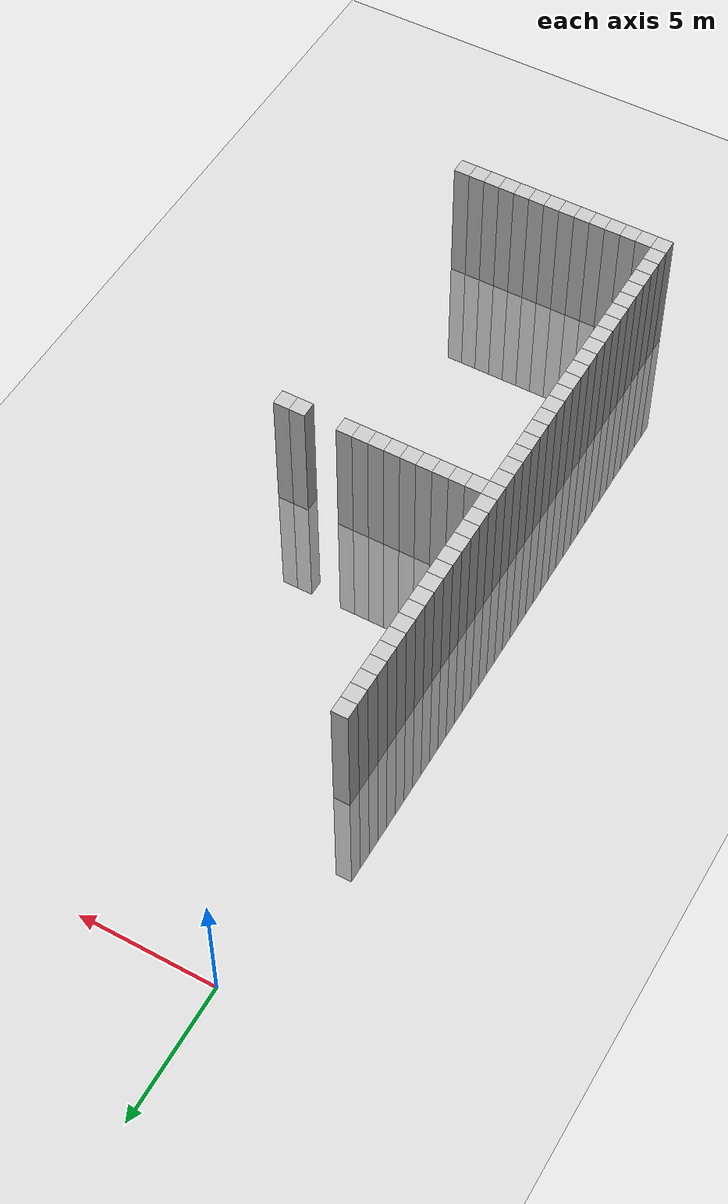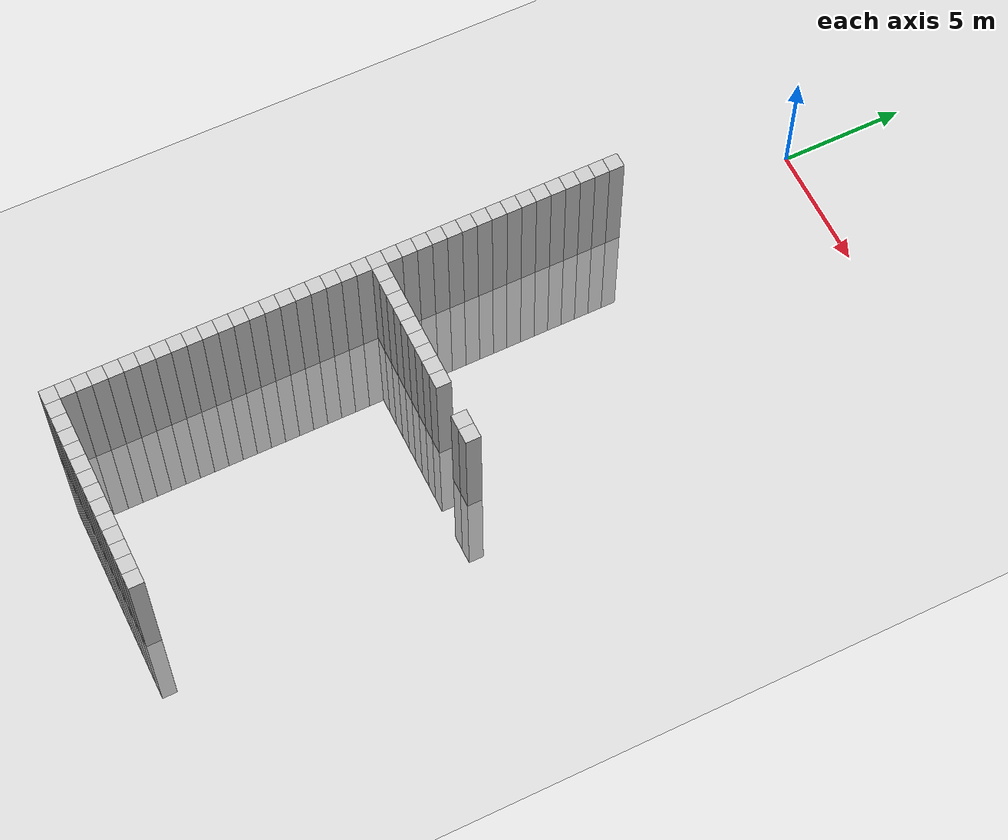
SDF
<sdf version="1.6">
 <world name="default">
  <model name="ground_plane">
   <static>1</static>
   <link name="link">
    <collision name="collision">
     <geometry><plane><normal>0 0 1</normal><size>100 100</size></plane></geometry>
     <surface><friction><ode><mu>100</mu><mu2>50</mu2></ode></friction></surface>
    </collision>
    <visual name="visual">
     <cast_shadows>0</cast_shadows>
     <geometry><plane><normal>0 0 1</normal><size>100 100</size></plane></geometry>
     <material>
      <script><uri>file://media/materials/scripts/gazebo.material</uri><name>Gazebo/Grey</name></script>
     </material>
    </visual>
   </link>
  </model>
  <model name="unit_cylinder_687">
   <static>1</static>
   <pose>0 -30 0 0 -0 0</pose>
   <link name="link">
    <inertial>
     <mass>1</mass>
     <inertia><ixx>0.145833</ixx><ixy>0</ixy><ixz>0</ixz><iyy>0.145833</iyy><iyz>0</iyz><izz>0.125</izz></inertia>
    </inertial>
    <collision name="collision"><geometry><box><size>0.6 0.6 10</size></box></geometry></collision>
    <visual name="visual">
     <geometry><box><size>0.6 0.6 10</size></box></geometry>
     <material><ambient>0.753 0.753 0.753 1</ambient><diffuse>0.753 0.753 0.753 1</diffuse></material>
     <material>
      <script><name>Gazebo/Grey</name><uri>file://media/materials/scripts/gazebo.material</uri></script>
     </material>
    </visual>
   </link>
  </model>
  <model name="unit_cylinder_688">
   <static>1</static>
   <pose>0 -29.4 0 0 -0 0</pose>
   <link name="link">
    <inertial>
     <mass>1</mass>
     <inertia><ixx>0.145833</ixx><ixy>0</ixy><ixz>0</ixz><iyy>0.145833</iyy><iyz>0</iyz><izz>0.125</izz></inertia>
    </inertial>
    <collision name="collision"><geometry><box><size>0.6 0.6 10</size></box></geometry></collision>
    <visual name="visual">
     <geometry><box><size>0.6 0.6 10</size></box></geometry>
     <material><ambient>0.753 0.753 0.753 1</ambient><diffuse>0.753 0.753 0.753 1</diffuse></material>
     <material>
      <script><name>Gazebo/Grey</name><uri>file://media/materials/scripts/gazebo.material</uri></script>
     </material>
    </visual>
   </link>
  </model>
  <model name="unit_cylinder_689">
   <static>1</static>
   <pose>0 -28.8 0 0 -0 0</pose>
   <link name="link">
    <inertial>
     <mass>1</mass>
     <inertia><ixx>0.145833</ixx><ixy>0</ixy><ixz>0</ixz><iyy>0.145833</iyy><iyz>0</iyz><izz>0.125</izz></inertia>
    </inertial>
    <collision name="collision"><geometry><box><size>0.6 0.6 10</size></box></geometry></collision>
    <visual name="visual">
     <geometry><box><size>0.6 0.6 10</size></box></geometry>
     <material><ambient>0.753 0.753 0.753 1</ambient><diffuse>0.753 0.753 0.753 1</diffuse></material>
     <material>
      <script><name>Gazebo/Grey</name><uri>file://media/materials/scripts/gazebo.material</uri></script>
     </material>
    </visual>
   </link>
  </model>
  <model name="unit_cylinder_690">
   <static>1</static>
   <pose>0 -28.2 0 0 -0 0</pose>
   <link name="link">
    <inertial>
     <mass>1</mass>
     <inertia><ixx>0.145833</ixx><ixy>0</ixy><ixz>0</ixz><iyy>0.145833</iyy><iyz>0</iyz><izz>0.125</izz></inertia>
    </inertial>
    <collision name="collision"><geometry><box><size>0.6 0.6 10</size></box></geometry></collision>
    <visual name="visual">
     <geometry><box><size>0.6 0.6 10</size></box></geometry>
     <material><ambient>0.753 0.753 0.753 1</ambient><diffuse>0.753 0.753 0.753 1</diffuse></material>
     <material>
      <script><name>Gazebo/Grey</name><uri>file://media/materials/scripts/gazebo.material</uri></script>
     </material>
    </visual>
   </link>
  </model>
  <model name="unit_cylinder_691">
   <static>1</static>
   <pose>0 -27.6 0 0 -0 0</pose>
   <link name="link">
    <inertial>
     <mass>1</mass>
     <inertia><ixx>0.145833</ixx><ixy>0</ixy><ixz>0</ixz><iyy>0.145833</iyy><iyz>0</iyz><izz>0.125</izz></inertia>
    </inertial>
    <collision name="collision"><geometry><box><size>0.6 0.6 10</size></box></geometry></collision>
    <visual name="visual">
     <geometry><box><size>0.6 0.6 10</size></box></geometry>
     <material><ambient>0.753 0.753 0.753 1</ambient><diffuse>0.753 0.753 0.753 1</diffuse></material>
     <material>
      <script><name>Gazebo/Grey</name><uri>file://media/materials/scripts/gazebo.material</uri></script>
     </material>
    </visual>
   </link>
  </model>
  <model name="unit_cylinder_692">
   <static>1</static>
   <pose>0 -27 0 0 -0 0</pose>
   <link name="link">
    <inertial>
     <mass>1</mass>
     <inertia><ixx>0.145833</ixx><ixy>0</ixy><ixz>0</ixz><iyy>0.145833</iyy><iyz>0</iyz><izz>0.125</izz></inertia>
    </inertial>
    <collision name="collision"><geometry><box><size>0.6 0.6 10</size></box></geometry></collision>
    <visual name="visual">
     <geometry><box><size>0.6 0.6 10</size></box></geometry>
     <material><ambient>0.753 0.753 0.753 1</ambient><diffuse>0.753 0.753 0.753 1</diffuse></material>
     <material>
      <script><name>Gazebo/Grey</name><uri>file://media/materials/scripts/gazebo.material</uri></script>
     </material>
    </visual>
   </link>
  </model>
  <model name="unit_cylinder_693">
   <static>1</static>
   <pose>0 -26.4 0 0 -0 0</pose>
   <link name="link">
    <inertial>
     <mass>1</mass>
     <inertia><ixx>0.145833</ixx><ixy>0</ixy><ixz>0</ixz><iyy>0.145833</iyy><iyz>0</iyz><izz>0.125</izz></inertia>
    </inertial>
    <collision name="collision"><geometry><box><size>0.6 0.6 10</size></box></geometry></collision>
    <visual name="visual">
     <geometry><box><size>0.6 0.6 10</size></box></geometry>
     <material><ambient>0.753 0.753 0.753 1</ambient><diffuse>0.753 0.753 0.753 1</diffuse></material>
     <material>
      <script><name>Gazebo/Grey</name><uri>file://media/materials/scripts/gazebo.material</uri></script>
     </material>
    </visual>
   </link>
  </model>
  <model name="unit_cylinder_694">
   <static>1</static>
   <pose>0 -25.8 0 0 -0 0</pose>
   <link name="link">
    <inertial>
     <mass>1</mass>
     <inertia><ixx>0.145833</ixx><ixy>0</ixy><ixz>0</ixz><iyy>0.145833</iyy><iyz>0</iyz><izz>0.125</izz></inertia>
    </inertial>
    <collision name="collision"><geometry><box><size>0.6 0.6 10</size></box></geometry></collision>
    <visual name="visual">
     <geometry><box><size>0.6 0.6 10</size></box></geometry>
     <material><ambient>0.753 0.753 0.753 1</ambient><diffuse>0.753 0.753 0.753 1</diffuse></material>
     <material>
      <script><name>Gazebo/Grey</name><uri>file://media/materials/scripts/gazebo.material</uri></script>
     </material>
    </visual>
   </link>
  </model>
  <model name="unit_cylinder_695">
   <static>1</static>
   <pose>0 -25.2 0 0 -0 0</pose>
   <link name="link">
    <inertial>
     <mass>1</mass>
     <inertia><ixx>0.145833</ixx><ixy>0</ixy><ixz>0</ixz><iyy>0.145833</iyy><iyz>0</iyz><izz>0.125</izz></inertia>
    </inertial>
    <collision name="collision"><geometry><box><size>0.6 0.6 10</size></box></geometry></collision>
    <visual name="visual">
     <geometry><box><size>0.6 0.6 10</size></box></geometry>
     <material><ambient>0.753 0.753 0.753 1</ambient><diffuse>0.753 0.753 0.753 1</diffuse></material>
     <material>
      <script><name>Gazebo/Grey</name><uri>file://media/materials/scripts/gazebo.material</uri></script>
     </material>
    </visual>
   </link>
  </model>
  <model name="unit_cylinder_696">
   <static>1</static>
   <pose>0 -24.6 0 0 -0 0</pose>
   <link name="link">
    <inertial>
     <mass>1</mass>
     <inertia><ixx>0.145833</ixx><ixy>0</ixy><ixz>0</ixz><iyy>0.145833</iyy><iyz>0</iyz><izz>0.125</izz></inertia>
    </inertial>
    <collision name="collision"><geometry><box><size>0.6 0.6 10</size></box></geometry></collision>
    <visual name="visual">
     <geometry><box><size>0.6 0.6 10</size></box></geometry>
     <material><ambient>0.753 0.753 0.753 1</ambient><diffuse>0.753 0.753 0.753 1</diffuse></material>
     <material>
      <script><name>Gazebo/Grey</name><uri>file://media/materials/scripts/gazebo.material</uri></script>
     </material>
    </visual>
   </link>
  </model>
  <model name="unit_cylinder_697">
   <static>1</static>
   <pose>0 -24 0 0 -0 0</pose>
   <link name="link">
    <inertial>
     <mass>1</mass>
     <inertia><ixx>0.145833</ixx><ixy>0</ixy><ixz>0</ixz><iyy>0.145833</iyy><iyz>0</iyz><izz>0.125</izz></inertia>
    </inertial>
    <collision name="collision"><geometry><box><size>0.6 0.6 10</size></box></geometry></collision>
    <visual name="visual">
     <geometry><box><size>0.6 0.6 10</size></box></geometry>
     <material><ambient>0.753 0.753 0.753 1</ambient><diffuse>0.753 0.753 0.753 1</diffuse></material>
     <material>
      <script><name>Gazebo/Grey</name><uri>file://media/materials/scripts/gazebo.material</uri></script>
     </material>
    </visual>
   </link>
  </model>
  <model name="unit_cylinder_698">
   <static>1</static>
   <pose>0 -23.4 0 0 -0 0</pose>
   <link name="link">
    <inertial>
     <mass>1</mass>
     <inertia><ixx>0.145833</ixx><ixy>0</ixy><ixz>0</ixz><iyy>0.145833</iyy><iyz>0</iyz><izz>0.125</izz></inertia>
    </inertial>
    <collision name="collision"><geometry><box><size>0.6 0.6 10</size></box></geometry></collision>
    <visual name="visual">
     <geometry><box><size>0.6 0.6 10</size></box></geometry>
     <material><ambient>0.753 0.753 0.753 1</ambient><diffuse>0.753 0.753 0.753 1</diffuse></material>
     <material>
      <script><name>Gazebo/Grey</name><uri>file://media/materials/scripts/gazebo.material</uri></script>
     </material>
    </visual>
   </link>
  </model>
  <model name="unit_cylinder_699">
   <static>1</static>
   <pose>0 -22.8 0 0 -0 0</pose>
   <link name="link">
    <inertial>
     <mass>1</mass>
     <inertia><ixx>0.145833</ixx><ixy>0</ixy><ixz>0</ixz><iyy>0.145833</iyy><iyz>0</iyz><izz>0.125</izz></inertia>
    </inertial>
    <collision name="collision"><geometry><box><size>0.6 0.6 10</size></box></geometry></collision>
    <visual name="visual">
     <geometry><box><size>0.6 0.6 10</size></box></geometry>
     <material><ambient>0.753 0.753 0.753 1</ambient><diffuse>0.753 0.753 0.753 1</diffuse></material>
     <material>
      <script><name>Gazebo/Grey</name><uri>file://media/materials/scripts/gazebo.material</uri></script>
     </material>
    </visual>
   </link>
  </model>
  <model name="unit_cylinder_700">
   <static>1</static>
   <pose>0 -22.2 0 0 -0 0</pose>
   <link name="link">
    <inertial>
     <mass>1</mass>
     <inertia><ixx>0.145833</ixx><ixy>0</ixy><ixz>0</ixz><iyy>0.145833</iyy><iyz>0</iyz><izz>0.125</izz></inertia>
    </inertial>
    <collision name="collision"><geometry><box><size>0.6 0.6 10</size></box></geometry></collision>
    <visual name="visual">
     <geometry><box><size>0.6 0.6 10</size></box></geometry>
     <material><ambient>0.753 0.753 0.753 1</ambient><diffuse>0.753 0.753 0.753 1</diffuse></material>
     <material>
      <script><name>Gazebo/Grey</name><uri>file://media/materials/scripts/gazebo.material</uri></script>
     </material>
    </visual>
   </link>
  </model>
  <model name="unit_cylinder_701">
   <static>1</static>
   <pose>0 -21.6 0 0 -0 0</pose>
   <link name="link">
    <inertial>
     <mass>1</mass>
     <inertia><ixx>0.145833</ixx><ixy>0</ixy><ixz>0</ixz><iyy>0.145833</iyy><iyz>0</iyz><izz>0.125</izz></inertia>
    </inertial>
    <collision name="collision"><geometry><box><size>0.6 0.6 10</size></box></geometry></collision>
    <visual name="visual">
     <geometry><box><size>0.6 0.6 10</size></box></geometry>
     <material><ambient>0.753 0.753 0.753 1</ambient><diffuse>0.753 0.753 0.753 1</diffuse></material>
     <material>
      <script><name>Gazebo/Grey</name><uri>file://media/materials/scripts/gazebo.material</uri></script>
     </material>
    </visual>
   </link>
  </model>
  <model name="unit_cylinder_702">
   <static>1</static>
   <pose>0 -21 0 0 -0 0</pose>
   <link name="link">
    <inertial>
     <mass>1</mass>
     <inertia><ixx>0.145833</ixx><ixy>0</ixy><ixz>0</ixz><iyy>0.145833</iyy><iyz>0</iyz><izz>0.125</izz></inertia>
    </inertial>
    <collision name="collision"><geometry><box><size>0.6 0.6 10</size></box></geometry></collision>
    <visual name="visual">
     <geometry><box><size>0.6 0.6 10</size></box></geometry>
     <material><ambient>0.753 0.753 0.753 1</ambient><diffuse>0.753 0.753 0.753 1</diffuse></material>
     <material>
      <script><name>Gazebo/Grey</name><uri>file://media/materials/scripts/gazebo.material</uri></script>
     </material>
    </visual>
   </link>
  </model>
  <model name="unit_cylinder_703">
   <static>1</static>
   <pose>0 -20.4 0 0 -0 0</pose>
   <link name="link">
    <inertial>
     <mass>1</mass>
     <inertia><ixx>0.145833</ixx><ixy>0</ixy><ixz>0</ixz><iyy>0.145833</iyy><iyz>0</iyz><izz>0.125</izz></inertia>
    </inertial>
    <collision name="collision"><geometry><box><size>0.6 0.6 10</size></box></geometry></collision>
    <visual name="visual">
     <geometry><box><size>0.6 0.6 10</size></box></geometry>
     <material><ambient>0.753 0.753 0.753 1</ambient><diffuse>0.753 0.753 0.753 1</diffuse></material>
     <material>
      <script><name>Gazebo/Grey</name><uri>file://media/materials/scripts/gazebo.material</uri></script>
     </material>
    </visual>
   </link>
  </model>
  <model name="unit_cylinder_704">
   <static>1</static>
   <pose>0 -19.8 0 0 -0 0</pose>
   <link name="link">
    <inertial>
     <mass>1</mass>
     <inertia><ixx>0.145833</ixx><ixy>0</ixy><ixz>0</ixz><iyy>0.145833</iyy><iyz>0</iyz><izz>0.125</izz></inertia>
    </inertial>
    <collision name="collision"><geometry><box><size>0.6 0.6 10</size></box></geometry></collision>
    <visual name="visual">
     <geometry><box><size>0.6 0.6 10</size></box></geometry>
     <material><ambient>0.753 0.753 0.753 1</ambient><diffuse>0.753 0.753 0.753 1</diffuse></material>
     <material>
      <script><name>Gazebo/Grey</name><uri>file://media/materials/scripts/gazebo.material</uri></script>
     </material>
    </visual>
   </link>
  </model>
  <model name="unit_cylinder_705">
   <static>1</static>
   <pose>0 -19.2 0 0 -0 0</pose>
   <link name="link">
    <inertial>
     <mass>1</mass>
     <inertia><ixx>0.145833</ixx><ixy>0</ixy><ixz>0</ixz><iyy>0.145833</iyy><iyz>0</iyz><izz>0.125</izz></inertia>
    </inertial>
    <collision name="collision"><geometry><box><size>0.6 0.6 10</size></box></geometry></collision>
    <visual name="visual">
     <geometry><box><size>0.6 0.6 10</size></box></geometry>
     <material><ambient>0.753 0.753 0.753 1</ambient><diffuse>0.753 0.753 0.753 1</diffuse></material>
     <material>
      <script><name>Gazebo/Grey</name><uri>file://media/materials/scripts/gazebo.material</uri></script>
     </material>
    </visual>
   </link>
  </model>
  <model name="unit_cylinder_706">
   <static>1</static>
   <pose>0 -18.6 0 0 -0 0</pose>
   <link name="link">
    <inertial>
     <mass>1</mass>
     <inertia><ixx>0.145833</ixx><ixy>0</ixy><ixz>0</ixz><iyy>0.145833</iyy><iyz>0</iyz><izz>0.125</izz></inertia>
    </inertial>
    <collision name="collision"><geometry><box><size>0.6 0.6 10</size></box></geometry></collision>
    <visual name="visual">
     <geometry><box><size>0.6 0.6 10</size></box></geometry>
     <material><ambient>0.753 0.753 0.753 1</ambient><diffuse>0.753 0.753 0.753 1</diffuse></material>
     <material>
      <script><name>Gazebo/Grey</name><uri>file://media/materials/scripts/gazebo.material</uri></script>
     </material>
    </visual>
   </link>
  </model>
  <model name="unit_cylinder_707">
   <static>1</static>
   <pose>0 -18 0 0 -0 0</pose>
   <link name="link">
    <inertial>
     <mass>1</mass>
     <inertia><ixx>0.145833</ixx><ixy>0</ixy><ixz>0</ixz><iyy>0.145833</iyy><iyz>0</iyz><izz>0.125</izz></inertia>
    </inertial>
    <collision name="collision"><geometry><box><size>0.6 0.6 10</size></box></geometry></collision>
    <visual name="visual">
     <geometry><box><size>0.6 0.6 10</size></box></geometry>
     <material><ambient>0.753 0.753 0.753 1</ambient><diffuse>0.753 0.753 0.753 1</diffuse></material>
     <material>
      <script><name>Gazebo/Grey</name><uri>file://media/materials/scripts/gazebo.material</uri></script>
     </material>
    </visual>
   </link>
  </model>
  <model name="unit_cylinder_708">
   <static>1</static>
   <pose>0 -17.4 0 0 -0 0</pose>
   <link name="link">
    <inertial>
     <mass>1</mass>
     <inertia><ixx>0.145833</ixx><ixy>0</ixy><ixz>0</ixz><iyy>0.145833</iyy><iyz>0</iyz><izz>0.125</izz></inertia>
    </inertial>
    <collision name="collision"><geometry><box><size>0.6 0.6 10</size></box></geometry></collision>
    <visual name="visual">
     <geometry><box><size>0.6 0.6 10</size></box></geometry>
     <material><ambient>0.753 0.753 0.753 1</ambient><diffuse>0.753 0.753 0.753 1</diffuse></material>
     <material>
      <script><name>Gazebo/Grey</name><uri>file://media/materials/scripts/gazebo.material</uri></script>
     </material>
    </visual>
   </link>
  </model>
  <model name="unit_cylinder_709">
   <static>1</static>
   <pose>0 -16.8 0 0 -0 0</pose>
   <link name="link">
    <inertial>
     <mass>1</mass>
     <inertia><ixx>0.145833</ixx><ixy>0</ixy><ixz>0</ixz><iyy>0.145833</iyy><iyz>0</iyz><izz>0.125</izz></inertia>
    </inertial>
    <collision name="collision"><geometry><box><size>0.6 0.6 10</size></box></geometry></collision>
    <visual name="visual">
     <geometry><box><size>0.6 0.6 10</size></box></geometry>
     <material><ambient>0.753 0.753 0.753 1</ambient><diffuse>0.753 0.753 0.753 1</diffuse></material>
     <material>
      <script><name>Gazebo/Grey</name><uri>file://media/materials/scripts/gazebo.material</uri></script>
     </material>
    </visual>
   </link>
  </model>
  <model name="unit_cylinder_710">
   <static>1</static>
   <pose>0 -16.2 0 0 -0 0</pose>
   <link name="link">
    <inertial>
     <mass>1</mass>
     <inertia><ixx>0.145833</ixx><ixy>0</ixy><ixz>0</ixz><iyy>0.145833</iyy><iyz>0</iyz><izz>0.125</izz></inertia>
    </inertial>
    <collision name="collision"><geometry><box><size>0.6 0.6 10</size></box></geometry></collision>
    <visual name="visual">
     <geometry><box><size>0.6 0.6 10</size></box></geometry>
     <material><ambient>0.753 0.753 0.753 1</ambient><diffuse>0.753 0.753 0.753 1</diffuse></material>
     <material>
      <script><name>Gazebo/Grey</name><uri>file://media/materials/scripts/gazebo.material</uri></script>
     </material>
    </visual>
   </link>
  </model>
  <model name="unit_cylinder_711">
   <static>1</static>
   <pose>0 -15.6 0 0 -0 0</pose>
   <link name="link">
    <inertial>
     <mass>1</mass>
     <inertia><ixx>0.145833</ixx><ixy>0</ixy><ixz>0</ixz><iyy>0.145833</iyy><iyz>0</iyz><izz>0.125</izz></inertia>
    </inertial>
    <collision name="collision"><geometry><box><size>0.6 0.6 10</size></box></geometry></collision>
    <visual name="visual">
     <geometry><box><size>0.6 0.6 10</size></box></geometry>
     <material><ambient>0.753 0.753 0.753 1</ambient><diffuse>0.753 0.753 0.753 1</diffuse></material>
     <material>
      <script><name>Gazebo/Grey</name><uri>file://media/materials/scripts/gazebo.material</uri></script>
     </material>
    </visual>
   </link>
  </model>
  <model name="unit_cylinder_712">
   <static>1</static>
   <pose>0 -15 0 0 -0 0</pose>
   <link name="link">
    <inertial>
     <mass>1</mass>
     <inertia><ixx>0.145833</ixx><ixy>0</ixy><ixz>0</ixz><iyy>0.145833</iyy><iyz>0</iyz><izz>0.125</izz></inertia>
    </inertial>
    <collision name="collision"><geometry><box><size>0.6 0.6 10</size></box></geometry></collision>
    <visual name="visual">
     <geometry><box><size>0.6 0.6 10</size></box></geometry>
     <material><ambient>0.753 0.753 0.753 1</ambient><diffuse>0.753 0.753 0.753 1</diffuse></material>
     <material>
      <script><name>Gazebo/Grey</name><uri>file://media/materials/scripts/gazebo.material</uri></script>
     </material>
    </visual>
   </link>
  </model>
  <model name="unit_cylinder_713">
   <static>1</static>
   <pose>0 -14.4 0 0 -0 0</pose>
   <link name="link">
    <inertial>
     <mass>1</mass>
     <inertia><ixx>0.145833</ixx><ixy>0</ixy><ixz>0</ixz><iyy>0.145833</iyy><iyz>0</iyz><izz>0.125</izz></inertia>
    </inertial>
    <collision name="collision"><geometry><box><size>0.6 0.6 10</size></box></geometry></collision>
    <visual name="visual">
     <geometry><box><size>0.6 0.6 10</size></box></geometry>
     <material><ambient>0.753 0.753 0.753 1</ambient><diffuse>0.753 0.753 0.753 1</diffuse></material>
     <material>
      <script><name>Gazebo/Grey</name><uri>file://media/materials/scripts/gazebo.material</uri></script>
     </material>
    </visual>
   </link>
  </model>
  <model name="unit_cylinder_714">
   <static>1</static>
   <pose>0 -13.8 0 0 -0 0</pose>
   <link name="link">
    <inertial>
     <mass>1</mass>
     <inertia><ixx>0.145833</ixx><ixy>0</ixy><ixz>0</ixz><iyy>0.145833</iyy><iyz>0</iyz><izz>0.125</izz></inertia>
    </inertial>
    <collision name="collision"><geometry><box><size>0.6 0.6 10</size></box></geometry></collision>
    <visual name="visual">
     <geometry><box><size>0.6 0.6 10</size></box></geometry>
     <material><ambient>0.753 0.753 0.753 1</ambient><diffuse>0.753 0.753 0.753 1</diffuse></material>
     <material>
      <script><name>Gazebo/Grey</name><uri>file://media/materials/scripts/gazebo.material</uri></script>
     </material>
    </visual>
   </link>
  </model>
  <model name="unit_cylinder_715">
   <static>1</static>
   <pose>0 -13.2 0 0 -0 0</pose>
   <link name="link">
    <inertial>
     <mass>1</mass>
     <inertia><ixx>0.145833</ixx><ixy>0</ixy><ixz>0</ixz><iyy>0.145833</iyy><iyz>0</iyz><izz>0.125</izz></inertia>
    </inertial>
    <collision name="collision"><geometry><box><size>0.6 0.6 10</size></box></geometry></collision>
    <visual name="visual">
     <geometry><box><size>0.6 0.6 10</size></box></geometry>
     <material><ambient>0.753 0.753 0.753 1</ambient><diffuse>0.753 0.753 0.753 1</diffuse></material>
     <material>
      <script><name>Gazebo/Grey</name><uri>file://media/materials/scripts/gazebo.material</uri></script>
     </material>
    </visual>
   </link>
  </model>
  <model name="unit_cylinder_716">
   <static>1</static>
   <pose>0 -12.6 0 0 -0 0</pose>
   <link name="link">
    <inertial>
     <mass>1</mass>
     <inertia><ixx>0.145833</ixx><ixy>0</ixy><ixz>0</ixz><iyy>0.145833</iyy><iyz>0</iyz><izz>0.125</izz></inertia>
    </inertial>
    <collision name="collision"><geometry><box><size>0.6 0.6 10</size></box></geometry></collision>
    <visual name="visual">
     <geometry><box><size>0.6 0.6 10</size></box></geometry>
     <material><ambient>0.753 0.753 0.753 1</ambient><diffuse>0.753 0.753 0.753 1</diffuse></material>
     <material>
      <script><name>Gazebo/Grey</name><uri>file://media/materials/scripts/gazebo.material</uri></script>
     </material>
    </visual>
   </link>
  </model>
  <model name="unit_cylinder_717">
   <static>1</static>
   <pose>0 -12 0 0 -0 0</pose>
   <link name="link">
    <inertial>
     <mass>1</mass>
     <inertia><ixx>0.145833</ixx><ixy>0</ixy><ixz>0</ixz><iyy>0.145833</iyy><iyz>0</iyz><izz>0.125</izz></inertia>
    </inertial>
    <collision name="collision"><geometry><box><size>0.6 0.6 10</size></box></geometry></collision>
    <visual name="visual">
     <geometry><box><size>0.6 0.6 10</size></box></geometry>
     <material><ambient>0.753 0.753 0.753 1</ambient><diffuse>0.753 0.753 0.753 1</diffuse></material>
     <material>
      <script><name>Gazebo/Grey</name><uri>file://media/materials/scripts/gazebo.material</uri></script>
     </material>
    </visual>
   </link>
  </model>
  <model name="unit_cylinder_718">
   <static>1</static>
   <pose>0 -11.4 0 0 -0 0</pose>
   <link name="link">
    <inertial>
     <mass>1</mass>
     <inertia><ixx>0.145833</ixx><ixy>0</ixy><ixz>0</ixz><iyy>0.145833</iyy><iyz>0</iyz><izz>0.125</izz></inertia>
    </inertial>
    <collision name="collision"><geometry><box><size>0.6 0.6 10</size></box></geometry></collision>
    <visual name="visual">
     <geometry><box><size>0.6 0.6 10</size></box></geometry>
     <material><ambient>0.753 0.753 0.753 1</ambient><diffuse>0.753 0.753 0.753 1</diffuse></material>
     <material>
      <script><name>Gazebo/Grey</name><uri>file://media/materials/scripts/gazebo.material</uri></script>
     </material>
    </visual>
   </link>
  </model>
  <model name="unit_cylinder_719">
   <static>1</static>
   <pose>0 -10.8 0 0 -0 0</pose>
   <link name="link">
    <inertial>
     <mass>1</mass>
     <inertia><ixx>0.145833</ixx><ixy>0</ixy><ixz>0</ixz><iyy>0.145833</iyy><iyz>0</iyz><izz>0.125</izz></inertia>
    </inertial>
    <collision name="collision"><geometry><box><size>0.6 0.6 10</size></box></geometry></collision>
    <visual name="visual">
     <geometry><box><size>0.6 0.6 10</size></box></geometry>
     <material><ambient>0.753 0.753 0.753 1</ambient><diffuse>0.753 0.753 0.753 1</diffuse></material>
     <material>
      <script><name>Gazebo/Grey</name><uri>file://media/materials/scripts/gazebo.material</uri></script>
     </material>
    </visual>
   </link>
  </model>
  <model name="unit_cylinder_720">
   <static>1</static>
   <pose>0 -10.2 0 0 -0 0</pose>
   <link name="link">
    <inertial>
     <mass>1</mass>
     <inertia><ixx>0.145833</ixx><ixy>0</ixy><ixz>0</ixz><iyy>0.145833</iyy><iyz>0</iyz><izz>0.125</izz></inertia>
    </inertial>
    <collision name="collision"><geometry><box><size>0.6 0.6 10</size></box></geometry></collision>
    <visual name="visual">
     <geometry><box><size>0.6 0.6 10</size></box></geometry>
     <material><ambient>0.753 0.753 0.753 1</ambient><diffuse>0.753 0.753 0.753 1</diffuse></material>
     <material>
      <script><name>Gazebo/Grey</name><uri>file://media/materials/scripts/gazebo.material</uri></script>
     </material>
    </visual>
   </link>
  </model>
  <model name="unit_cylinder_721">
   <static>1</static>
   <pose>0 -9.6 0 0 -0 0</pose>
   <link name="link">
    <inertial>
     <mass>1</mass>
     <inertia><ixx>0.145833</ixx><ixy>0</ixy><ixz>0</ixz><iyy>0.145833</iyy><iyz>0</iyz><izz>0.125</izz></inertia>
    </inertial>
    <collision name="collision"><geometry><box><size>0.6 0.6 10</size></box></geometry></collision>
    <visual name="visual">
     <geometry><box><size>0.6 0.6 10</size></box></geometry>
     <material><ambient>0.753 0.753 0.753 1</ambient><diffuse>0.753 0.753 0.753 1</diffuse></material>
     <material>
      <script><name>Gazebo/Grey</name><uri>file://media/materials/scripts/gazebo.material</uri></script>
     </material>
    </visual>
   </link>
  </model>
  <model name="unit_cylinder_722">
   <static>1</static>
   <pose>0 -9 0 0 -0 0</pose>
   <link name="link">
    <inertial>
     <mass>1</mass>
     <inertia><ixx>0.145833</ixx><ixy>0</ixy><ixz>0</ixz><iyy>0.145833</iyy><iyz>0</iyz><izz>0.125</izz></inertia>
    </inertial>
    <collision name="collision"><geometry><box><size>0.6 0.6 10</size></box></geometry></collision>
    <visual name="visual">
     <geometry><box><size>0.6 0.6 10</size></box></geometry>
     <material><ambient>0.753 0.753 0.753 1</ambient><diffuse>0.753 0.753 0.753 1</diffuse></material>
     <material>
      <script><name>Gazebo/Grey</name><uri>file://media/materials/scripts/gazebo.material</uri></script>
     </material>
    </visual>
   </link>
  </model>
  <model name="unit_cylinder_723">
   <static>1</static>
   <pose>0 -8.4 0 0 -0 0</pose>
   <link name="link">
    <inertial>
     <mass>1</mass>
     <inertia><ixx>0.145833</ixx><ixy>0</ixy><ixz>0</ixz><iyy>0.145833</iyy><iyz>0</iyz><izz>0.125</izz></inertia>
    </inertial>
    <collision name="collision"><geometry><box><size>0.6 0.6 10</size></box></geometry></collision>
    <visual name="visual">
     <geometry><box><size>0.6 0.6 10</size></box></geometry>
     <material><ambient>0.753 0.753 0.753 1</ambient><diffuse>0.753 0.753 0.753 1</diffuse></material>
     <material>
      <script><name>Gazebo/Grey</name><uri>file://media/materials/scripts/gazebo.material</uri></script>
     </material>
    </visual>
   </link>
  </model>
  <model name="unit_cylinder_724">
   <static>1</static>
   <pose>0 -7.8 0 0 -0 0</pose>
   <link name="link">
    <inertial>
     <mass>1</mass>
     <inertia><ixx>0.145833</ixx><ixy>0</ixy><ixz>0</ixz><iyy>0.145833</iyy><iyz>0</iyz><izz>0.125</izz></inertia>
    </inertial>
    <collision name="collision"><geometry><box><size>0.6 0.6 10</size></box></geometry></collision>
    <visual name="visual">
     <geometry><box><size>0.6 0.6 10</size></box></geometry>
     <material><ambient>0.753 0.753 0.753 1</ambient><diffuse>0.753 0.753 0.753 1</diffuse></material>
     <material>
      <script><name>Gazebo/Grey</name><uri>file://media/materials/scripts/gazebo.material</uri></script>
     </material>
    </visual>
   </link>
  </model>
  <model name="unit_cylinder_730">
   <static>1</static>
   <pose>0.6 -30 0 0 -0 0</pose>
   <link name="link">
    <inertial>
     <mass>1</mass>
     <inertia><ixx>0.145833</ixx><ixy>0</ixy><ixz>0</ixz><iyy>0.145833</iyy><iyz>0</iyz><izz>0.125</izz></inertia>
    </inertial>
    <collision name="collision"><geometry><box><size>0.6 0.6 10</size></box></geometry></collision>
    <visual name="visual">
     <geometry><box><size>0.6 0.6 10</size></box></geometry>
     <material><ambient>0.753 0.753 0.753 1</ambient><diffuse>0.753 0.753 0.753 1</diffuse></material>
     <material>
      <script><name>Gazebo/Grey</name><uri>file://media/materials/scripts/gazebo.material</uri></script>
     </material>
    </visual>
   </link>
  </model>
  <model name="unit_cylinder_731">
   <static>1</static>
   <pose>0.6 -17.4 0 0 -0 0</pose>
   <link name="link">
    <inertial>
     <mass>1</mass>
     <inertia><ixx>0.145833</ixx><ixy>0</ixy><ixz>0</ixz><iyy>0.145833</iyy><iyz>0</iyz><izz>0.125</izz></inertia>
    </inertial>
    <collision name="collision"><geometry><box><size>0.6 0.6 10</size></box></geometry></collision>
    <visual name="visual">
     <geometry><box><size>0.6 0.6 10</size></box></geometry>
     <material><ambient>0.753 0.753 0.753 1</ambient><diffuse>0.753 0.753 0.753 1</diffuse></material>
     <material>
      <script><name>Gazebo/Grey</name><uri>file://media/materials/scripts/gazebo.material</uri></script>
     </material>
    </visual>
   </link>
  </model>
  <model name="unit_cylinder_733">
   <static>1</static>
   <pose>1.2 -30 0 0 -0 0</pose>
   <link name="link">
    <inertial>
     <mass>1</mass>
     <inertia><ixx>0.145833</ixx><ixy>0</ixy><ixz>0</ixz><iyy>0.145833</iyy><iyz>0</iyz><izz>0.125</izz></inertia>
    </inertial>
    <collision name="collision"><geometry><box><size>0.6 0.6 10</size></box></geometry></collision>
    <visual name="visual">
     <geometry><box><size>0.6 0.6 10</size></box></geometry>
     <material><ambient>0.753 0.753 0.753 1</ambient><diffuse>0.753 0.753 0.753 1</diffuse></material>
     <material>
      <script><name>Gazebo/Grey</name><uri>file://media/materials/scripts/gazebo.material</uri></script>
     </material>
    </visual>
   </link>
  </model>
  <model name="unit_cylinder_734">
   <static>1</static>
   <pose>1.2 -17.4 0 0 -0 0</pose>
   <link name="link">
    <inertial>
     <mass>1</mass>
     <inertia><ixx>0.145833</ixx><ixy>0</ixy><ixz>0</ixz><iyy>0.145833</iyy><iyz>0</iyz><izz>0.125</izz></inertia>
    </inertial>
    <collision name="collision"><geometry><box><size>0.6 0.6 10</size></box></geometry></collision>
    <visual name="visual">
     <geometry><box><size>0.6 0.6 10</size></box></geometry>
     <material><ambient>0.753 0.753 0.753 1</ambient><diffuse>0.753 0.753 0.753 1</diffuse></material>
     <material>
      <script><name>Gazebo/Grey</name><uri>file://media/materials/scripts/gazebo.material</uri></script>
     </material>
    </visual>
   </link>
  </model>
  <model name="unit_cylinder_736">
   <static>1</static>
   <pose>1.8 -30 0 0 -0 0</pose>
   <link name="link">
    <inertial>
     <mass>1</mass>
     <inertia><ixx>0.145833</ixx><ixy>0</ixy><ixz>0</ixz><iyy>0.145833</iyy><iyz>0</iyz><izz>0.125</izz></inertia>
    </inertial>
    <collision name="collision"><geometry><box><size>0.6 0.6 10</size></box></geometry></collision>
    <visual name="visual">
     <geometry><box><size>0.6 0.6 10</size></box></geometry>
     <material><ambient>0.753 0.753 0.753 1</ambient><diffuse>0.753 0.753 0.753 1</diffuse></material>
     <material>
      <script><name>Gazebo/Grey</name><uri>file://media/materials/scripts/gazebo.material</uri></script>
     </material>
    </visual>
   </link>
  </model>
  <model name="unit_cylinder_737">
   <static>1</static>
   <pose>1.8 -17.4 0 0 -0 0</pose>
   <link name="link">
    <inertial>
     <mass>1</mass>
     <inertia><ixx>0.145833</ixx><ixy>0</ixy><ixz>0</ixz><iyy>0.145833</iyy><iyz>0</iyz><izz>0.125</izz></inertia>
    </inertial>
    <collision name="collision"><geometry><box><size>0.6 0.6 10</size></box></geometry></collision>
    <visual name="visual">
     <geometry><box><size>0.6 0.6 10</size></box></geometry>
     <material><ambient>0.753 0.753 0.753 1</ambient><diffuse>0.753 0.753 0.753 1</diffuse></material>
     <material>
      <script><name>Gazebo/Grey</name><uri>file://media/materials/scripts/gazebo.material</uri></script>
     </material>
    </visual>
   </link>
  </model>
  <model name="unit_cylinder_739">
   <static>1</static>
   <pose>2.4 -30 0 0 -0 0</pose>
   <link name="link">
    <inertial>
     <mass>1</mass>
     <inertia><ixx>0.145833</ixx><ixy>0</ixy><ixz>0</ixz><iyy>0.145833</iyy><iyz>0</iyz><izz>0.125</izz></inertia>
    </inertial>
    <collision name="collision"><geometry><box><size>0.6 0.6 10</size></box></geometry></collision>
    <visual name="visual">
     <geometry><box><size>0.6 0.6 10</size></box></geometry>
     <material><ambient>0.753 0.753 0.753 1</ambient><diffuse>0.753 0.753 0.753 1</diffuse></material>
     <material>
      <script><name>Gazebo/Grey</name><uri>file://media/materials/scripts/gazebo.material</uri></script>
     </material>
    </visual>
   </link>
  </model>
  <model name="unit_cylinder_740">
   <static>1</static>
   <pose>2.4 -17.4 0 0 -0 0</pose>
   <link name="link">
    <inertial>
     <mass>1</mass>
     <inertia><ixx>0.145833</ixx><ixy>0</ixy><ixz>0</ixz><iyy>0.145833</iyy><iyz>0</iyz><izz>0.125</izz></inertia>
    </inertial>
    <collision name="collision"><geometry><box><size>0.6 0.6 10</size></box></geometry></collision>
    <visual name="visual">
     <geometry><box><size>0.6 0.6 10</size></box></geometry>
     <material><ambient>0.753 0.753 0.753 1</ambient><diffuse>0.753 0.753 0.753 1</diffuse></material>
     <material>
      <script><name>Gazebo/Grey</name><uri>file://media/materials/scripts/gazebo.material</uri></script>
     </material>
    </visual>
   </link>
  </model>
  <model name="unit_cylinder_742">
   <static>1</static>
   <pose>3 -30 0 0 -0 0</pose>
   <link name="link">
    <inertial>
     <mass>1</mass>
     <inertia><ixx>0.145833</ixx><ixy>0</ixy><ixz>0</ixz><iyy>0.145833</iyy><iyz>0</iyz><izz>0.125</izz></inertia>
    </inertial>
    <collision name="collision"><geometry><box><size>0.6 0.6 10</size></box></geometry></collision>
    <visual name="visual">
     <geometry><box><size>0.6 0.6 10</size></box></geometry>
     <material><ambient>0.753 0.753 0.753 1</ambient><diffuse>0.753 0.753 0.753 1</diffuse></material>
     <material>
      <script><name>Gazebo/Grey</name><uri>file://media/materials/scripts/gazebo.material</uri></script>
     </material>
    </visual>
   </link>
  </model>
  <model name="unit_cylinder_743">
   <static>1</static>
   <pose>3 -17.4 0 0 -0 0</pose>
   <link name="link">
    <inertial>
     <mass>1</mass>
     <inertia><ixx>0.145833</ixx><ixy>0</ixy><ixz>0</ixz><iyy>0.145833</iyy><iyz>0</iyz><izz>0.125</izz></inertia>
    </inertial>
    <collision name="collision"><geometry><box><size>0.6 0.6 10</size></box></geometry></collision>
    <visual name="visual">
     <geometry><box><size>0.6 0.6 10</size></box></geometry>
     <material><ambient>0.753 0.753 0.753 1</ambient><diffuse>0.753 0.753 0.753 1</diffuse></material>
     <material>
      <script><name>Gazebo/Grey</name><uri>file://media/materials/scripts/gazebo.material</uri></script>
     </material>
    </visual>
   </link>
  </model>
  <model name="unit_cylinder_745">
   <static>1</static>
   <pose>3.6 -30 0 0 -0 0</pose>
   <link name="link">
    <inertial>
     <mass>1</mass>
     <inertia><ixx>0.145833</ixx><ixy>0</ixy><ixz>0</ixz><iyy>0.145833</iyy><iyz>0</iyz><izz>0.125</izz></inertia>
    </inertial>
    <collision name="collision"><geometry><box><size>0.6 0.6 10</size></box></geometry></collision>
    <visual name="visual">
     <geometry><box><size>0.6 0.6 10</size></box></geometry>
     <material><ambient>0.753 0.753 0.753 1</ambient><diffuse>0.753 0.753 0.753 1</diffuse></material>
     <material>
      <script><name>Gazebo/Grey</name><uri>file://media/materials/scripts/gazebo.material</uri></script>
     </material>
    </visual>
   </link>
  </model>
  <model name="unit_cylinder_746">
   <static>1</static>
   <pose>3.6 -17.4 0 0 -0 0</pose>
   <link name="link">
    <inertial>
     <mass>1</mass>
     <inertia><ixx>0.145833</ixx><ixy>0</ixy><ixz>0</ixz><iyy>0.145833</iyy><iyz>0</iyz><izz>0.125</izz></inertia>
    </inertial>
    <collision name="collision"><geometry><box><size>0.6 0.6 10</size></box></geometry></collision>
    <visual name="visual">
     <geometry><box><size>0.6 0.6 10</size></box></geometry>
     <material><ambient>0.753 0.753 0.753 1</ambient><diffuse>0.753 0.753 0.753 1</diffuse></material>
     <material>
      <script><name>Gazebo/Grey</name><uri>file://media/materials/scripts/gazebo.material</uri></script>
     </material>
    </visual>
   </link>
  </model>
  <model name="unit_cylinder_748">
   <static>1</static>
   <pose>4.2 -30 0 0 -0 0</pose>
   <link name="link">
    <inertial>
     <mass>1</mass>
     <inertia><ixx>0.145833</ixx><ixy>0</ixy><ixz>0</ixz><iyy>0.145833</iyy><iyz>0</iyz><izz>0.125</izz></inertia>
    </inertial>
    <collision name="collision"><geometry><box><size>0.6 0.6 10</size></box></geometry></collision>
    <visual name="visual">
     <geometry><box><size>0.6 0.6 10</size></box></geometry>
     <material><ambient>0.753 0.753 0.753 1</ambient><diffuse>0.753 0.753 0.753 1</diffuse></material>
     <material>
      <script><name>Gazebo/Grey</name><uri>file://media/materials/scripts/gazebo.material</uri></script>
     </material>
    </visual>
   </link>
  </model>
  <model name="unit_cylinder_749">
   <static>1</static>
   <pose>4.2 -17.4 0 0 -0 0</pose>
   <link name="link">
    <inertial>
     <mass>1</mass>
     <inertia><ixx>0.145833</ixx><ixy>0</ixy><ixz>0</ixz><iyy>0.145833</iyy><iyz>0</iyz><izz>0.125</izz></inertia>
    </inertial>
    <collision name="collision"><geometry><box><size>0.6 0.6 10</size></box></geometry></collision>
    <visual name="visual">
     <geometry><box><size>0.6 0.6 10</size></box></geometry>
     <material><ambient>0.753 0.753 0.753 1</ambient><diffuse>0.753 0.753 0.753 1</diffuse></material>
     <material>
      <script><name>Gazebo/Grey</name><uri>file://media/materials/scripts/gazebo.material</uri></script>
     </material>
    </visual>
   </link>
  </model>
  <model name="unit_cylinder_751">
   <static>1</static>
   <pose>4.8 -30 0 0 -0 0</pose>
   <link name="link">
    <inertial>
     <mass>1</mass>
     <inertia><ixx>0.145833</ixx><ixy>0</ixy><ixz>0</ixz><iyy>0.145833</iyy><iyz>0</iyz><izz>0.125</izz></inertia>
    </inertial>
    <collision name="collision"><geometry><box><size>0.6 0.6 10</size></box></geometry></collision>
    <visual name="visual">
     <geometry><box><size>0.6 0.6 10</size></box></geometry>
     <material><ambient>0.753 0.753 0.753 1</ambient><diffuse>0.753 0.753 0.753 1</diffuse></material>
     <material>
      <script><name>Gazebo/Grey</name><uri>file://media/materials/scripts/gazebo.material</uri></script>
     </material>
    </visual>
   </link>
  </model>
  <model name="unit_cylinder_752">
   <static>1</static>
   <pose>4.8 -17.4 0 0 -0 0</pose>
   <link name="link">
    <inertial>
     <mass>1</mass>
     <inertia><ixx>0.145833</ixx><ixy>0</ixy><ixz>0</ixz><iyy>0.145833</iyy><iyz>0</iyz><izz>0.125</izz></inertia>
    </inertial>
    <collision name="collision"><geometry><box><size>0.6 0.6 10</size></box></geometry></collision>
    <visual name="visual">
     <geometry><box><size>0.6 0.6 10</size></box></geometry>
     <material><ambient>0.753 0.753 0.753 1</ambient><diffuse>0.753 0.753 0.753 1</diffuse></material>
     <material>
      <script><name>Gazebo/Grey</name><uri>file://media/materials/scripts/gazebo.material</uri></script>
     </material>
    </visual>
   </link>
  </model>
  <model name="unit_cylinder_754">
   <static>1</static>
   <pose>5.4 -30 0 0 -0 0</pose>
   <link name="link">
    <inertial>
     <mass>1</mass>
     <inertia><ixx>0.145833</ixx><ixy>0</ixy><ixz>0</ixz><iyy>0.145833</iyy><iyz>0</iyz><izz>0.125</izz></inertia>
    </inertial>
    <collision name="collision"><geometry><box><size>0.6 0.6 10</size></box></geometry></collision>
    <visual name="visual">
     <geometry><box><size>0.6 0.6 10</size></box></geometry>
     <material><ambient>0.753 0.753 0.753 1</ambient><diffuse>0.753 0.753 0.753 1</diffuse></material>
     <material>
      <script><name>Gazebo/Grey</name><uri>file://media/materials/scripts/gazebo.material</uri></script>
     </material>
    </visual>
   </link>
  </model>
  <model name="unit_cylinder_755">
   <static>1</static>
   <pose>5.4 -17.4 0 0 -0 0</pose>
   <link name="link">
    <inertial>
     <mass>1</mass>
     <inertia><ixx>0.145833</ixx><ixy>0</ixy><ixz>0</ixz><iyy>0.145833</iyy><iyz>0</iyz><izz>0.125</izz></inertia>
    </inertial>
    <collision name="collision"><geometry><box><size>0.6 0.6 10</size></box></geometry></collision>
    <visual name="visual">
     <geometry><box><size>0.6 0.6 10</size></box></geometry>
     <material><ambient>0.753 0.753 0.753 1</ambient><diffuse>0.753 0.753 0.753 1</diffuse></material>
     <material>
      <script><name>Gazebo/Grey</name><uri>file://media/materials/scripts/gazebo.material</uri></script>
     </material>
    </visual>
   </link>
  </model>
  <model name="unit_cylinder_757">
   <static>1</static>
   <pose>6 -30 0 0 -0 0</pose>
   <link name="link">
    <inertial>
     <mass>1</mass>
     <inertia><ixx>0.145833</ixx><ixy>0</ixy><ixz>0</ixz><iyy>0.145833</iyy><iyz>0</iyz><izz>0.125</izz></inertia>
    </inertial>
    <collision name="collision"><geometry><box><size>0.6 0.6 10</size></box></geometry></collision>
    <visual name="visual">
     <geometry><box><size>0.6 0.6 10</size></box></geometry>
     <material><ambient>0.753 0.753 0.753 1</ambient><diffuse>0.753 0.753 0.753 1</diffuse></material>
     <material>
      <script><name>Gazebo/Grey</name><uri>file://media/materials/scripts/gazebo.material</uri></script>
     </material>
    </visual>
   </link>
  </model>
  <model name="unit_cylinder_760">
   <static>1</static>
   <pose>6.6 -30 0 0 -0 0</pose>
   <link name="link">
    <inertial>
     <mass>1</mass>
     <inertia><ixx>0.145833</ixx><ixy>0</ixy><ixz>0</ixz><iyy>0.145833</iyy><iyz>0</iyz><izz>0.125</izz></inertia>
    </inertial>
    <collision name="collision"><geometry><box><size>0.6 0.6 10</size></box></geometry></collision>
    <visual name="visual">
     <geometry><box><size>0.6 0.6 10</size></box></geometry>
     <material><ambient>0.753 0.753 0.753 1</ambient><diffuse>0.753 0.753 0.753 1</diffuse></material>
     <material>
      <script><name>Gazebo/Grey</name><uri>file://media/materials/scripts/gazebo.material</uri></script>
     </material>
    </visual>
   </link>
  </model>
  <model name="unit_cylinder_763">
   <static>1</static>
   <pose>7.2 -30 0 0 -0 0</pose>
   <link name="link">
    <inertial>
     <mass>1</mass>
     <inertia><ixx>0.145833</ixx><ixy>0</ixy><ixz>0</ixz><iyy>0.145833</iyy><iyz>0</iyz><izz>0.125</izz></inertia>
    </inertial>
    <collision name="collision"><geometry><box><size>0.6 0.6 10</size></box></geometry></collision>
    <visual name="visual">
     <geometry><box><size>0.6 0.6 10</size></box></geometry>
     <material><ambient>0.753 0.753 0.753 1</ambient><diffuse>0.753 0.753 0.753 1</diffuse></material>
     <material>
      <script><name>Gazebo/Grey</name><uri>file://media/materials/scripts/gazebo.material</uri></script>
     </material>
    </visual>
   </link>
  </model>
  <model name="unit_cylinder_764">
   <static>1</static>
   <pose>7.2 -17.4 0 0 -0 0</pose>
   <link name="link">
    <inertial>
     <mass>1</mass>
     <inertia><ixx>0.145833</ixx><ixy>0</ixy><ixz>0</ixz><iyy>0.145833</iyy><iyz>0</iyz><izz>0.125</izz></inertia>
    </inertial>
    <collision name="collision"><geometry><box><size>0.6 0.6 10</size></box></geometry></collision>
    <visual name="visual">
     <geometry><box><size>0.6 0.6 10</size></box></geometry>
     <material><ambient>0.753 0.753 0.753 1</ambient><diffuse>0.753 0.753 0.753 1</diffuse></material>
     <material>
      <script><name>Gazebo/Grey</name><uri>file://media/materials/scripts/gazebo.material</uri></script>
     </material>
    </visual>
   </link>
  </model>
  <model name="unit_cylinder_766">
   <static>1</static>
   <pose>7.8 -30 0 0 -0 0</pose>
   <link name="link">
    <inertial>
     <mass>1</mass>
     <inertia><ixx>0.145833</ixx><ixy>0</ixy><ixz>0</ixz><iyy>0.145833</iyy><iyz>0</iyz><izz>0.125</izz></inertia>
    </inertial>
    <collision name="collision"><geometry><box><size>0.6 0.6 10</size></box></geometry></collision>
    <visual name="visual">
     <geometry><box><size>0.6 0.6 10</size></box></geometry>
     <material><ambient>0.753 0.753 0.753 1</ambient><diffuse>0.753 0.753 0.753 1</diffuse></material>
     <material>
      <script><name>Gazebo/Grey</name><uri>file://media/materials/scripts/gazebo.material</uri></script>
     </material>
    </visual>
   </link>
  </model>
  <model name="unit_cylinder_767">
   <static>1</static>
   <pose>7.8 -17.4 0 0 -0 0</pose>
   <link name="link">
    <inertial>
     <mass>1</mass>
     <inertia><ixx>0.145833</ixx><ixy>0</ixy><ixz>0</ixz><iyy>0.145833</iyy><iyz>0</iyz><izz>0.125</izz></inertia>
    </inertial>
    <collision name="collision"><geometry><box><size>0.6 0.6 10</size></box></geometry></collision>
    <visual name="visual">
     <geometry><box><size>0.6 0.6 10</size></box></geometry>
     <material><ambient>0.753 0.753 0.753 1</ambient><diffuse>0.753 0.753 0.753 1</diffuse></material>
     <material>
      <script><name>Gazebo/Grey</name><uri>file://media/materials/scripts/gazebo.material</uri></script>
     </material>
    </visual>
   </link>
  </model>
 </world>
</sdf>
